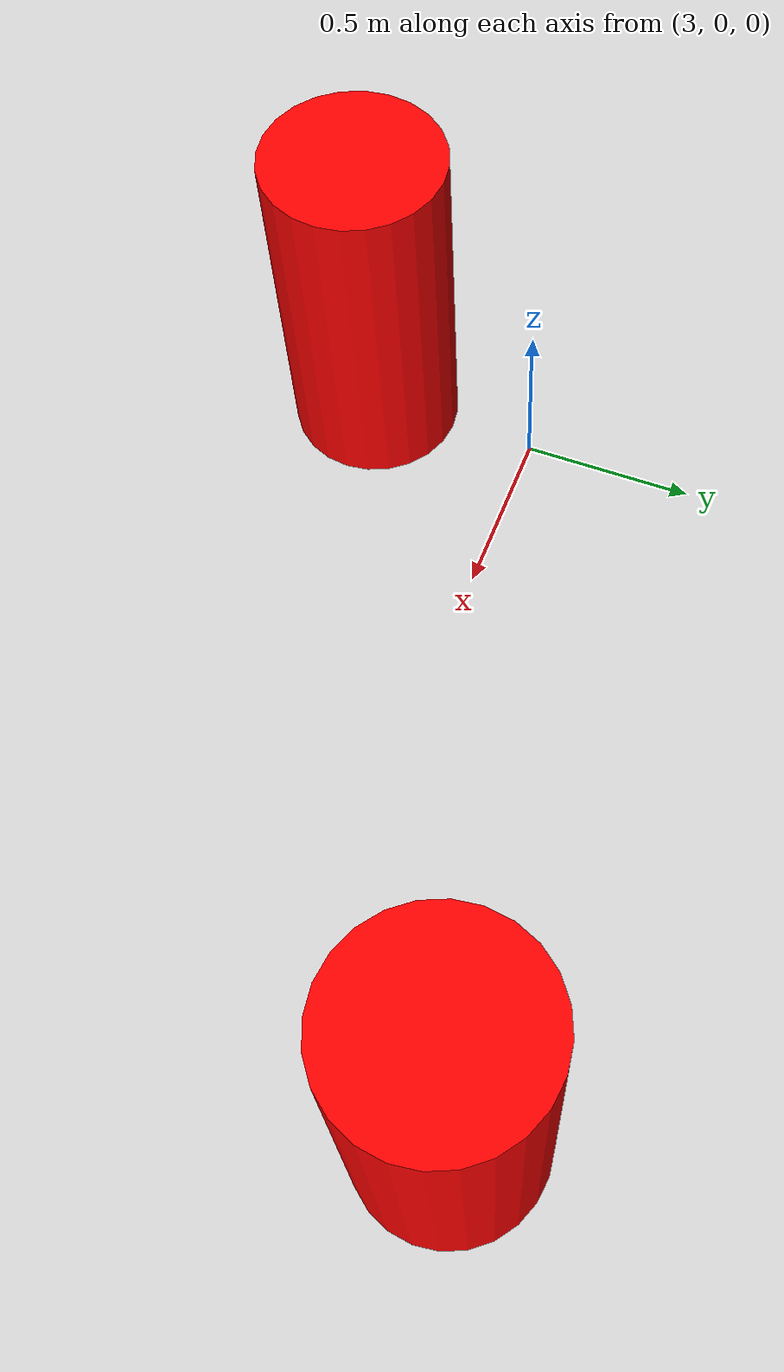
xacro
<?xml version="1.0" encoding="utf-8"?>
<robot name="simple_obstacles" xmlns:xacro="http://wiki.ros.org/xacro">

  <material name="red">
    <color rgba="1.0 0.0 0.0 1.0"/>
  </material>

  <xacro:macro name="obstacle_link" params="name material *geometry">
    <link name="${name}">
        <collision>
          <origin rpy="0 0 0" xyz="0 0 0" />
          <xacro:insert_block name="geometry" />
        </collision>
      <visual>
        <origin rpy="0 0 0" xyz="0 0 0" />
        <xacro:insert_block name="geometry" />
        <material name="${material}"/>
      </visual>
    </link>
  </xacro:macro>

  <link name="obstacle_base_link"/>

    <xacro:obstacle_link name="obstacle_link_2" material="red">
    <geometry>
      <cylinder radius="0.25" length="1."/>
    </geometry>
  </xacro:obstacle_link>
  <joint name="obstacle_joint_2" type="fixed">
    <origin rpy="0 0 0" xyz="5.0 0.5 0.5"/>
    <parent link="obstacle_base_link"/>
    <child link="obstacle_link_2"/>
  </joint>

  <xacro:obstacle_link name="obstacle_link_3" material="red">
    <geometry>
      <cylinder radius="0.25" length="1."/>
    </geometry>
  </xacro:obstacle_link>
  <joint name="obstacle_joint_3" type="fixed">
    <origin rpy="0 0 0" xyz="3.0 -0.5 0.5"/>
    <parent link="obstacle_base_link"/>
    <child link="obstacle_link_3"/>
  </joint>

</robot>
